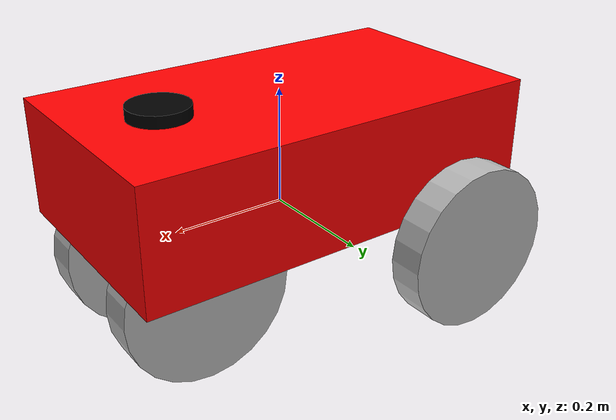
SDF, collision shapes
<?xml version="1.0" ?>
<sdf version="1.5">
  <model name="basic_mobile_bot">
  <static>false</static>

  <!-- ****************** ROBOT BASE FOOTPRINT ***************************  -->
  <pose>0.0 0.0 0.0 0.0 0.0 0.0</pose>
  <link name="base_footprint"/>

  <!-- ********************** ROBOT BASE *********************************  -->
  <link name="base_link">

    <collision name="base_collision">
      <pose>0 0 0.1 0 0 0</pose>
      <geometry>
        <box>
          <size>0.70 0.39 0.20</size>
        </box>
      </geometry>
    </collision>

    <visual name="base_visual">
      <pose>0 0 -0.05 1.5707963267949 0 3.141592654</pose>
      <geometry>
        <mesh>
          <uri>model://basic_mobile_bot_description/meshes/robot_base.stl</uri>
          <scale>1.0 1.0 1.0</scale>
        </mesh>
      </geometry>
      <material>
        <ambient>1.0 0.0 0.0 1.0</ambient>
        <diffuse>1.0 0.0 0.0 1.0</diffuse>
        <specular>0.0 0.0 0.0 1.0</specular>
        <emissive>0.0 0.0 0.0 1.0</emissive>
      </material>
    </visual>
  </link>

  <!-- *********************** IMU SENSOR SETUP **************************  -->
  <link name="imu_link">
    <gravity>true</gravity>
    <sensor name="bmb_imu" type="imu">
      <always_on>true</always_on>
      <update_rate>100</update_rate>
      <visualize>true</visualize>
      <imu>
        <orientation>
          <x>
            <noise type="gaussian">
              <mean>0.0</mean>
              <stddev>2e-3</stddev>
            </noise>
          </x>
          <y>
            <noise type="gaussian">
              <mean>0.0</mean>
              <stddev>2e-3</stddev>
            </noise>
          </y>
          <z>
            <noise type="gaussian">
              <mean>0.0</mean>
              <stddev>2e-3</stddev>
            </noise>
          </z>
        </orientation>
        <angular_velocity>
          <x>
            <noise type="gaussian">
              <mean>0.0</mean>
              <stddev>2e-4</stddev>
            </noise>
          </x>
          <y>
            <noise type="gaussian">
              <mean>0.0</mean>
              <stddev>2e-4</stddev>
            </noise>
          </y>
          <z>
            <noise type="gaussian">
              <mean>0.0</mean>
              <stddev>2e-4</stddev>
            </noise>
          </z>
        </angular_velocity>
        <linear_acceleration>
          <x>
            <noise type="gaussian">
              <mean>0.0</mean>
              <stddev>1.7e-2</stddev>
            </noise>
          </x>
          <y>
            <noise type="gaussian">
              <mean>0.0</mean>
              <stddev>1.7e-2</stddev>
            </noise>
          </y>
          <z>
            <noise type="gaussian">
              <mean>0.0</mean>
              <stddev>1.7e-2</stddev>
            </noise>
          </z>
        </linear_acceleration>
      </imu>
      <plugin name="basic_mobile_bot_imu" filename="libgazebo_ros_imu_sensor.so">
        <initial_orientation_as_reference>false</initial_orientation_as_reference>
        <frame_name>imu_link</frame_name>
        <ros>
          <namespace>/imu</namespace>
          <remapping>~/out:=data</remapping>
        </ros>
      </plugin>
    </sensor>
  </link>

  <!-- *********************** GPS SETUP *********************************  -->
  <link name="gps_link">
    <sensor name="bmb_gps" type="gps">
      <always_on>true</always_on>
      <update_rate>10.0</update_rate>
      <gps>
        <position_sensing>
          <horizontal>
            <noise type="gaussian">
              <mean>0.0</mean>
              <stddev>1e-2</stddev>
            </noise>
          </horizontal>
          <vertical>
            <noise type="gaussian">
              <mean>0.0</mean>
              <stddev>1</stddev>
            </noise>
          </vertical>
        </position_sensing>
      </gps>
      <plugin name="basic_mobile_bot_gps" filename="libgazebo_ros_gps_sensor.so">
        <ros>
          <remapping>~/out:=gps/fix</remapping>
        </ros>
      </plugin>
    </sensor>
  </link>

  <!-- ****************************** LIDAR *****************************    -->
  <link name="lidar_link">
    <inertial>
      <pose>0.215 0 0.8 0 0 0</pose>
      <inertia>
        <ixx>0.001</ixx>
        <ixy>0.000</ixy>
        <ixz>0.000</ixz>
        <iyy>0.001</iyy>
        <iyz>0.000</iyz>
        <izz>0.001</izz>
      </inertia>
      <mass>0.114</mass>
    </inertial>

    <collision name="lidar_collision">
      <pose>0.215 0 0.13 0 0 0</pose>
      <geometry>
        <cylinder>
          <radius>0.0508</radius>
          <length>0.18</length>
        </cylinder>
      </geometry>
    </collision>

    <visual name="lidar_visual">
      <pose>0.215 0 0.13 0 0 0</pose>
      <geometry>
        <cylinder>
          <radius>0.0508</radius>
          <length>0.18</length>
        </cylinder>
      </geometry>
      <material>
        <ambient>0.0 0.0 0.0 1.0</ambient>
        <diffuse>0.0 0.0 0.0 1.0</diffuse>
        <specular>0.0 0.0 0.0 1.0</specular>
        <emissive>0.0 0.0 0.0 1.0</emissive>
      </material>
    </visual>

    <sensor name="lidar" type="ray">
      <pose>0.215 0 0.215 0 0 0</pose>
      <always_on>true</always_on>
      <visualize>true</visualize>
      <update_rate>5</update_rate>
      <ray>
        <scan>
          <horizontal>
            <samples>120</samples>
            <resolution>1.000000</resolution>
            <min_angle>0</min_angle>
            <max_angle>6.283185</max_angle>
          </horizontal>
        </scan>
        <range>
          <min>0.12</min>
          <max>3.5</max>
          <resolution>0.015</resolution>
        </range>
        <noise>
          <type>gaussian</type>
          <mean>0.0</mean>
          <stddev>0.01</stddev>
        </noise>
      </ray>
      <plugin name="scan" filename="libgazebo_ros_ray_sensor.so">
        <ros>
          <remapping>~/out:=scan</remapping>
        </ros>
        <output_type>sensor_msgs/LaserScan</output_type>
        <frame_name>lidar_link</frame_name>
      </plugin>
    </sensor>
  </link>

  <!-- *********************** DRIVE WHEELS ******************************  -->
  <link name="rear_axle_link">
    <pose>-0.221 0 -0.05 0 1.570796 1.570796</pose>
  </link>

  <link name="drivewhl_l_link">
    <pose>-0.221 0.23 -0.05 0 1.570796 1.570796</pose>

    <collision name="drivewhl_l_collision">
      <geometry>
        <cylinder>
          <radius>0.14</radius>
          <length>0.06</length>
        </cylinder>
      </geometry>
    </collision>

    <visual name="drivewhl_l_visual">
      <geometry>
        <cylinder>
          <radius>0.14</radius>
          <length>0.06</length>
        </cylinder>
      </geometry>
    </visual>
  </link>

  <link name="drivewhl_r_link">
    <pose>-0.221 -0.23 -0.05 0 1.570796 1.570796</pose>

    <collision name="drivewhl_r_collision">
      <geometry>
        <cylinder>
          <radius>0.14</radius>
          <length>0.06</length>
        </cylinder>
      </geometry>
    </collision>

    <visual name="drivewhl_r_visual">
      <geometry>
        <cylinder>
          <radius>0.14</radius>
          <length>0.06</length>
        </cylinder>
      </geometry>
    </visual>
  </link>

  <!-- *********************** STEERING WHEEL ******************************  -->
  <!-- dummy link created to keep ackermann happy -->
  <link name="steering_wheel_link">
    <pose>0.217 0 -0.05 0 1.570796 1.570796</pose>
  </link>

  <link name="left_steering_link">
    <pose>0.217 0.1 -0.05 0 1.570796 1.570796</pose>
  </link>

  <link name="left_steering_wheel_link">
    <pose>0.217 0.1 -0.05 0 1.570796 1.570796</pose>
    <geometry>
      <cylinder>
        <radius>0.14</radius>
        <length>0.06</length>
      </cylinder>
    </geometry>
  </link>

  <link name="front_left_steering_wheel_link">
    <pose>0.217 0.1 -0.05 0 1.570796 1.570796</pose>

    <collision name="front_left_steering_wheel_collision">
      <geometry>
        <cylinder>
          <radius>0.14</radius>
          <length>0.06</length>
        </cylinder>
      </geometry>
    </collision>

    <visual name="front_left_steering_wheel_visual">
      <geometry>
        <cylinder>
          <radius>0.14</radius>
          <length>0.06</length>
        </cylinder>
      </geometry>
    </visual>
  </link>

 <link name="right_steering_link">
    <pose>0.217 -0.1 -0.05 0 1.570796 1.570796</pose>
  </link>

  <link name="right_steering_wheel_link">
    <pose>0.217 -0.1 -0.05 0 1.570796 1.570796</pose>
    <geometry>
      <cylinder>
        <radius>0.14</radius>
        <length>0.06</length>
      </cylinder>
    </geometry>
  </link>

  <link name="front_right_steering_wheel_link">
    <pose>0.217 -0.1 -0.05 0 1.570796 1.570796</pose>

    <collision name="front_right_steering_wheel_collision">
      <geometry>
        <cylinder>
          <radius>0.14</radius>
          <length>0.06</length>
        </cylinder>
      </geometry>
    </collision>

    <visual name="front_right_steering_wheel_visual">
      <geometry>
        <cylinder>
          <radius>0.14</radius>
          <length>0.06</length>
        </cylinder>
      </geometry>
    </visual>
  </link>

  <!-- ************************ JOINTS ***********************************  -->
  <!-- Pose of the joint is the same as the child link frame -->
  <!-- Axis is the axis of rotation relative to the child link frame -->

  <joint name="base_joint" type="fixed">
    <parent>base_footprint</parent>
    <child>base_link</child>
    <pose>0 0 0 0 0 0</pose>
  </joint>

  <joint name="rear_axle_joint" type="fixed">
   <parent>base_link</parent>
   <child>rear_axle_link</child>
   <pose>0 0 0 0 0 0</pose>
  </joint>

  <joint name="drivewhl_l_joint" type="revolute">
    <parent>rear_axle_link</parent>
    <child>drivewhl_l_link</child>
    <pose>0 0 0 0 0 0</pose>
    <axis>
      <xyz>0 0 1</xyz>
    </axis>
  </joint>

  <joint name="drivewhl_r_joint" type="revolute">
    <parent>rear_axle_link</parent>
    <child>drivewhl_r_link</child>
    <pose>0 0 0 0 0 0</pose>
    <axis>
      <xyz>0 0 1</xyz>
    </axis>
  </joint>

  <joint name="left_steering_joint" type="fixed">
   <parent>base_link</parent>
   <child>left_steering_link</child>
   <pose>0 0 0 0 0 0</pose>
  </joint>

  <!-- Dummy joint created to keep ackermann happy -->
  <joint name="steering_wheel_joint" type="revolute">
   <parent>base_link</parent>
   <child>steering_wheel_link</child>
   <pose>0 0 0 0 0 0</pose>
   <axis>
     <xyz>1 0 0</xyz>
   </axis>
  </joint>

  <joint name="left_steering_wheel_joint" type="revolute">
   <parent>left_steering_link</parent>
   <child>left_steering_wheel_link</child>
   <pose>0 0 0 0 0 0</pose>
   <axis>
     <xyz>-1 0 0</xyz>
   </axis>
  </joint>

  <joint name="front_left_steering_wheel_joint" type="revolute">
   <parent>left_steering_wheel_link</parent>
   <child>front_left_steering_wheel_link</child>
   <pose>0 0 0 0 0 0</pose>
   <axis>
     <xyz>0 0 1</xyz>
   </axis>
  </joint>

  <joint name="right_steering_joint" type="fixed">
   <parent>base_link</parent>
   <child>right_steering_link</child>
   <pose>0 0 0 0 0 0</pose>
  </joint>

  <joint name="right_steering_wheel_joint" type="revolute">
   <parent>right_steering_link</parent>
   <child>right_steering_wheel_link</child>
   <pose>0 0 0 0 0 0</pose>
   <axis>
     <xyz>-1 0 0</xyz>
   </axis>
  </joint>

  <joint name="front_right_steering_wheel_joint" type="revolute">
   <parent>right_steering_wheel_link</parent>
   <child>front_right_steering_wheel_link</child>
   <pose>0 0 0 0 0 0</pose>
   <axis>
     <xyz>0 0 1</xyz>
   </axis>
  </joint>

  <joint name="imu_joint" type="fixed">
   <parent>base_link</parent>
   <child>imu_link</child>
   <pose>0 0 0 0 0 0</pose>
  </joint>

  <joint name="gps_joint" type="fixed">
    <parent>base_link</parent>
    <child>gps_link</child>
    <pose>0 0 0 0 0 0</pose>
  </joint>

  <joint name="lidar_joint" type="fixed">
    <parent>base_link</parent>
    <child>lidar_link</child>
    <pose>0 0 0 0 0 0</pose>
  </joint>

  <!-- *********************** WHEEL ODOMETRY ***************************    -->
  <plugin name="dummy_plugin" filename="libgazebo_ros_hello_world_model_plugin.so"/>
  <plugin name="gazebo_ros_ackermann_drive_debug" filename="libgazebo_ros_ackermann_drive_debug.so">
    <ros>
      <namespace></namespace>
      <remapping>cmd_vel:=cmd_vel</remapping>
      <remapping>odom:=wheel/odometry</remapping>
    </ros>

    <rear_left_joint>drivewhl_l_joint</rear_left_joint>
    <rear_right_joint>drivewhl_r_joint</rear_right_joint>
    <left_steering_joint>right_steering_wheel_joint</left_steering_joint>
    <right_steering_joint>left_steering_wheel_joint</right_steering_joint>
    <steering_wheel_joint>steering_wheel_joint</steering_wheel_joint>
    <front_right_joint>front_right_steering_wheel_joint</front_right_joint>
    <front_left_joint>front_left_steering_wheel_joint</front_left_joint>

    <update_rate>100.0</update_rate>

    <!-- Max absolute steer angle for tyre in radians-->
    <!-- Any cmd_vel angular z greater than this would be capped -->
    <max_steer>0.6458</max_steer>

    <!-- Max absolute steering angle of steering wheel -->
    <max_steering_angle>7.85</max_steering_angle>

    <!-- Max absolute linear speed in m/s -->
    <max_speed>20</max_speed>

    <!-- PID tuning -->
    <left_steering_pid_gain>1500 0 1</left_steering_pid_gain>
    <left_steering_i_range>0 0</left_steering_i_range>
    <right_steering_pid_gain>1500 0 1</right_steering_pid_gain>
    <right_steering_i_range>0 0</right_steering_i_range>
    <linear_velocity_pid_gain>1000 0 1</linear_velocity_pid_gain>
    <linear_velocity_i_range>0 0</linear_velocity_i_range>

    <!-- output -->
    <publish_odom>true</publish_odom>
    <publish_odom_tf>false</publish_odom_tf>
    <publish_wheel_tf>false</publish_wheel_tf>
    <publish_distance>true</publish_distance>

    <odometry_frame>odom</odometry_frame>
    <robot_base_frame>base_footprint</robot_base_frame>

    <!-- just imitated the params of tricycle plugin. not sure if the following two params exist in this plugin -->
  </plugin>

 <!-- *********************** JOINT STATE PUBLISHER *********************   -->

  <plugin name="basic_mobile_bot_joint_state" filename="libgazebo_ros_joint_state_publisher.so">
    <ros>
      <remapping>~/out:=joint_states</remapping>
    </ros>
    <update_rate>30</update_rate>
    <joint_name>rear_axle_joint</joint_name>
    <joint_name>drivewhl_l_joint</joint_name>
    <joint_name>drivewhl_r_joint</joint_name>
    <joint_name>left_steering_joint</joint_name>
    <joint_name>left_steering_wheel_joint</joint_name>
    <joint_name>front_left_steering_wheel_joint</joint_name>
    <joint_name>right_steering_joint</joint_name>
    <joint_name>right_steering_wheel_joint</joint_name>
    <joint_name>front_right_steering_wheel_joint</joint_name>
    <joint_name>steering_wheel_joint</joint_name>
  </plugin>

  </model>
</sdf>
